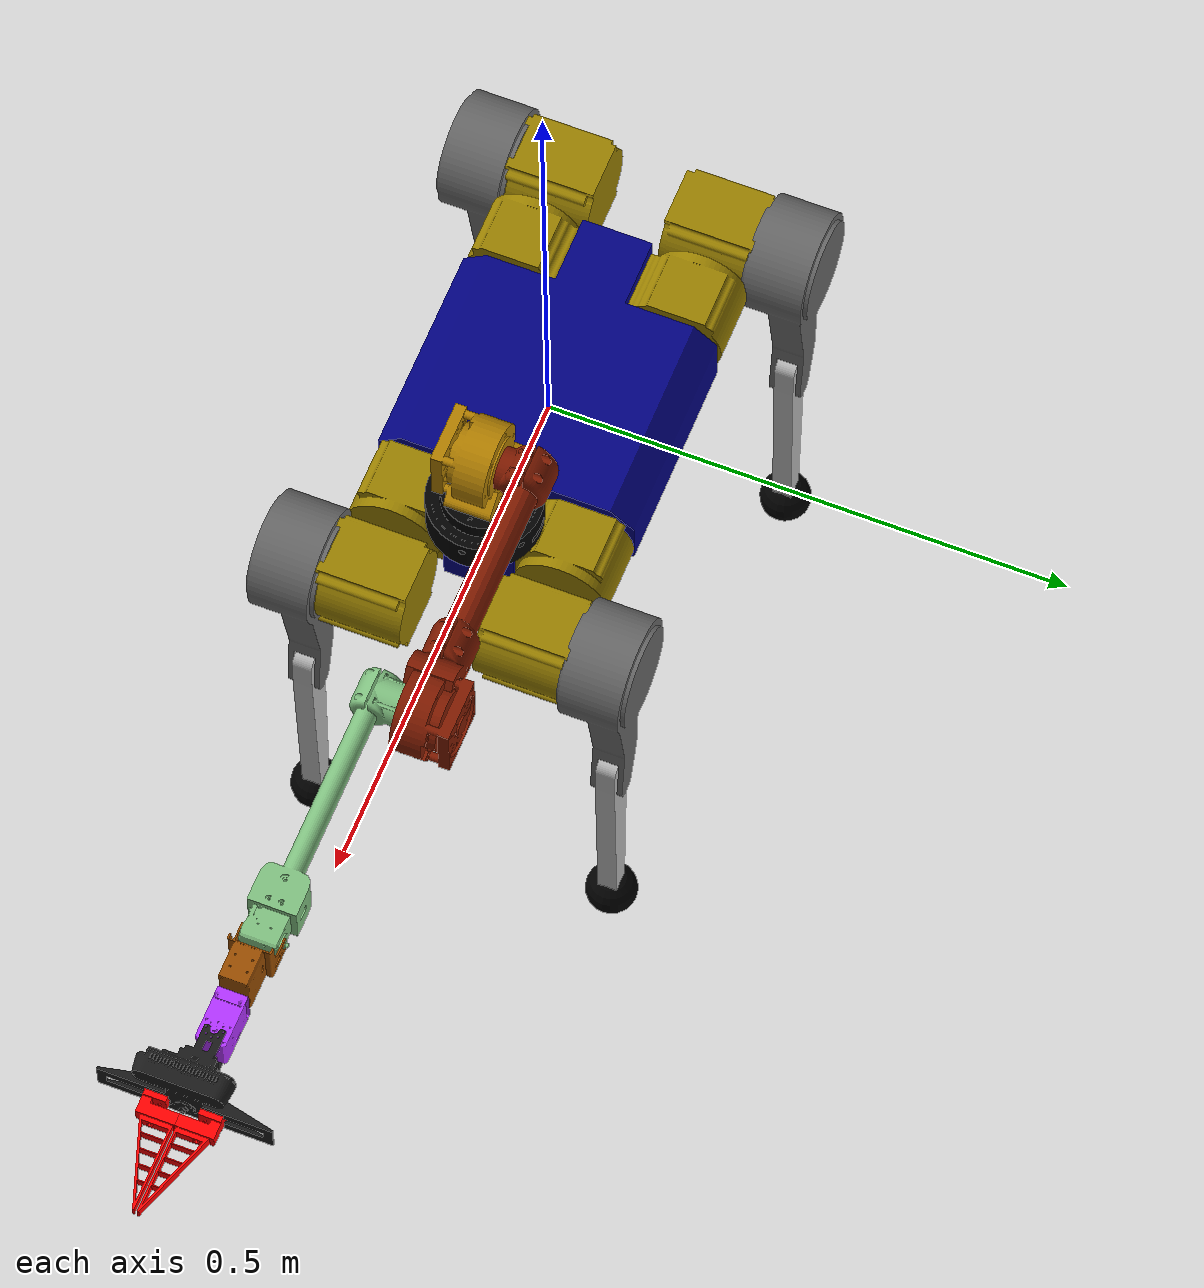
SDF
<?xml version="1.0" encoding="utf-8"?>
<sdf version='1.7'>
  <model name='rbq3'>
    <self_collide>true</self_collide>
    <joint name='world_joint' type='prismatic'>
      <child>robot_world</child>
      <parent>world</parent>
      <axis>
        <xyz>0 0 1</xyz>
        <dynamics>
          <damping>100</damping>
          <friction>100</friction>
          <spring_reference>0</spring_reference>
          <spring_stiffness>0</spring_stiffness>
        </dynamics>
      </axis>
    </joint>

    <link name='robot_world'>
    </link>

    <joint name='rbq3_base_joint' type='universal'>
      <child>trunk</child>
      <parent>robot_world</parent>
      <axis>
        <xyz>1 0 0</xyz>
        <dynamics>
          <damping>1</damping>
          <friction>1</friction>
          <spring_reference>0</spring_reference>
          <spring_stiffness>0</spring_stiffness>
        </dynamics>
        <limit>
          <lower>-1e+16</lower>
          <upper>1e+16</upper>
        </limit>
        <use_parent_model_frame>1</use_parent_model_frame>
      </axis>
      <axis2>
        <xyz>0 1 0</xyz>
        <limit>
          <lower>-1e+16</lower>
          <upper>1e+16</upper>
        </limit>
        <dynamics>
          <damping>1</damping>
          <friction>1</friction>
          <spring_reference>0</spring_reference>
          <spring_stiffness>0</spring_stiffness>
        </dynamics>
        <use_parent_model_frame>1</use_parent_model_frame>
      </axis2>
    </joint>

    <link name='trunk'>
      <inertial>
        <pose>-0.000351 -9e-06 -0.003571 0 -0 0</pose>
        <mass>11.5766</mass>
        <inertia>
          <ixx>0.0668505</ixx>
          <ixy>-6.16234e-05</ixy>
          <ixz>-8.13391e-05</ixz>
          <iyy>0.124923</iyy>
          <iyz>-2.17591e-05</iyz>
          <izz>0.177428</izz>
        </inertia>
      </inertial>
      <collision name='trunk_collision'>
        <pose>0 0 0.0084 0 -0 0</pose>
        <geometry>
          <box>
            <size>0.3 0.15 0.0168</size>
          </box>
        </geometry>
      </collision>
      <visual name='trunk_visual'>
        <pose>0 0 0 0 -0 0</pose>
        <geometry>
          <mesh>
            <scale>1 1 1</scale>
            <uri>model://rbq3_description/meshes/trunk1.dae</uri>
          </mesh>
        </geometry>
        <material>
          <ambient>0 0 0.5 1</ambient>  <!-- light brown -->
        </material>
      </visual>
      <visual name='trunk_fixed_joint_lump__hip_roll_motor_visual_1'>
        <pose>0 0 0 0 -0 0</pose>
        <geometry>
          <mesh>
            <scale>1 1 1</scale>
            <uri>model://rbq3_description/meshes/trunk2.stl</uri>
          </mesh>
        </geometry>
        <material>
          <ambient>0.6 0.5 0 1</ambient>  <!-- light brown -->
        </material>
      </visual>
      <visual name='trunk_fixed_joint_lump__imu_link_visual_2'>
        <pose>-0.1275 0.015 -0.02 0 -0 0</pose>
        <geometry>
          <box>
            <size>0.001 0.001 0.001</size>
          </box>
        </geometry>
      </visual>
      <sensor name='rbq3_base_imu' type='imu'>
        <pose frame=''>-0.1275 0.015 -0.02 0 -0 0</pose>
        <imu>
          <angular_velocity>
            <x> <noise type='none'></noise> </x>
            <y> <noise type='none'></noise> </y>
            <z> <noise type='none'></noise> </z>
          </angular_velocity>
          <linear_acceleration>
            <x> <noise type='none'></noise> </x>
            <y> <noise type='none'></noise> </y>
            <z> <noise type='none'></noise> </z>
          </linear_acceleration>
        </imu>
        <always_on>1</always_on>
        <update_rate>1000</update_rate>
      </sensor>
    </link>

    <joint name='FL_hip_joint' type='revolute'>
      <pose relative_to='trunk'>0.22445 0.07946 0 0 -0 0</pose>
      <parent>trunk</parent>
      <child>FL_hip</child>
      <axis>
        <xyz>1 0 0</xyz>
        <limit>
          <lower>-6.28</lower>
          <upper>6.28</upper>
          <effort>30</effort>
          <velocity>52.4</velocity>
        </limit>
        <dynamics>
          <damping>0.2</damping>
          <friction>0.2</friction>
          <spring_reference>0</spring_reference>
          <spring_stiffness>0</spring_stiffness>
        </dynamics>
      </axis>
    </joint>

    <link name='FL_hip'>
      <pose relative_to='FL_hip_joint'>0 0 0 0 -0 0</pose>
      <inertial>
        <pose>-0.00451 0.01758 4e-05 0 -0 0</pose>
        <mass>2.38674</mass>
        <inertia>
          <ixx>0.00343764</ixx>
          <ixy>0.000120457</ixy>
          <ixz>5.6913e-07</ixz>
          <iyy>0.00271864</iyy>
          <iyz>3.82695e-06</iyz>
          <izz>0.00343771</izz>
        </inertia>
      </inertial>
      <collision name='FL_hip_collision'>
        <pose>0 -0.021 0 1.5708 -0 0</pose>
        <geometry>
          <cylinder>
            <length>0.089</length>
            <radius>0.0445</radius>
          </cylinder>
        </geometry>
      </collision>
      <visual name='FL_hip_visual'>
        <pose>0 0 0 0 -0 0</pose>
        <geometry>
          <mesh>
            <scale>1 1 1</scale>
            <uri>model://rbq3_description/meshes/hip.stl</uri>
          </mesh>
        </geometry>
        <material>
          <ambient>0.6 0.5 0 1</ambient>  <!-- light brown -->
        </material>
      </visual>
    </link>

    <joint name='FL_thigh_joint' type='revolute'>
      <pose relative_to='FL_hip'>0 0.06995 0 0 -0 0</pose>
      <parent>FL_hip</parent>
      <child>FL_thigh</child>
      <axis>
        <xyz>0 1 0</xyz>
        <limit>
          <lower>-6.28</lower>
          <upper>6.28</upper>
          <effort>30</effort>
          <velocity>28.6</velocity>
        </limit>
        <dynamics>
          <damping>0.2</damping>
          <friction>0.2</friction>
          <spring_reference>0</spring_reference>
          <spring_stiffness>0</spring_stiffness>
        </dynamics>
      </axis>
    </joint>

    <link name='FL_thigh'>
      <pose relative_to='FL_thigh_joint'>0 0 0 0 -0 0</pose>
      <inertial>
        <pose>-0.00226 0.00768 -0.04112 0 -0 0</pose>
        <mass>0.67231</mass>
        <inertia>
          <ixx>0.00314694</ixx>
          <ixy>4.35611e-06</ixy>
          <ixz>9.85122e-05</ixz>
          <iyy>0.00342909</iyy>
          <iyz>0.000158744</iyz>
          <izz>0.000636166</izz>
        </inertia>
      </inertial>
      <collision name='FL_thigh_collision'>
        <pose>0 0 -0.1125 0 1.5708 0</pose>
        <geometry>
          <box>
            <size>0.225 0.04 0.04</size>
          </box>
        </geometry>
      </collision>
      <visual name='FL_thigh_visual'>
        <pose>0 0 0 0 -0 0</pose>
        <geometry>
          <mesh>
            <scale>1 1 1</scale>
            <uri>model://rbq3_description/meshes/thigh.dae</uri>
          </mesh>
        </geometry>
        <material>
          <ambient>0.4 0.4 0.4 1</ambient>  <!-- gray -->
        </material>
      </visual>
    </link>

    <joint name='FL_calf_joint' type='revolute'>
      <pose relative_to='FL_thigh'>0 0 -0.225 0 -0 0</pose>
      <parent>FL_thigh</parent>
      <child>FL_calf</child>
      <axis>
        <xyz>0 1 0</xyz>
        <limit>
          <lower>-2.77507</lower>
          <upper>-0.610865</upper>
          <effort>30</effort>
          <velocity>28.6</velocity>
        </limit>
        <dynamics>
          <damping>0.2</damping>
          <friction>0.2</friction>
          <spring_reference>0</spring_reference>
          <spring_stiffness>0</spring_stiffness>
        </dynamics>
      </axis>
    </joint>

    <link name='FL_calf'>
      <pose relative_to='FL_calf_joint'>0 0 0 0 -0 0</pose>
      <inertial>
        <pose>0.00075 0.00035 -0.08803 0 -0 0</pose>
        <mass>0.173</mass>
        <inertia>
          <ixx>0.00125879</ixx>
          <ixy>1.394e-08</ixy>
          <ixz>-1.34976e-06</ixz>
          <iyy>0.00126646</iyy>
          <iyz>-1.00471e-05</iyz>
          <izz>2.07785e-05</izz>
        </inertia>
      </inertial>
      <collision name='FL_calf_collision'>
        <pose>0 0 -0.1125 0 1.5708 0</pose>
        <geometry>
          <box>
            <size>0.225 0.025 0.025</size>
          </box>
        </geometry>
      </collision>
      <collision name='FL_calf_fixed_joint_lump__FL_foot_collision_1'>
        <pose>0 0 -0.225 0 -0 0</pose>
        <geometry>
          <sphere>
            <radius>0.025</radius>
          </sphere>
        </geometry>
      </collision>
      <visual name='FL_calf_visual'>
        <pose>0 0 0 0 -0 0</pose>
        <geometry>
          <mesh>
            <scale>1 1 1</scale>
            <uri>model://rbq3_description/meshes/calf.stl</uri>
          </mesh>
        </geometry>
      </visual>
      <visual name='FL_calf_fixed_joint_lump__FL_foot_visual_1'>
        <pose>0 0 -0.225 0 -0 0</pose>
        <geometry>
          <sphere>
            <radius>0.025</radius>
          </sphere>
        </geometry>
        <material>
          <ambient>0 0 0 1</ambient>  <!-- black -->
        </material>
      </visual>
    </link>

    <joint name='FR_hip_joint' type='revolute'>
      <pose relative_to='trunk'>0.22445 -0.07946 0 0 -0 0</pose>
      <parent>trunk</parent>
      <child>FR_hip</child>
      <axis>
        <xyz>1 0 0</xyz>
        <limit>
          <lower>-6.28</lower>
          <upper>6.28</upper>
          <effort>30</effort>
          <velocity>52.4</velocity>
        </limit>
        <dynamics>
          <damping>0.2</damping>
          <friction>0.2</friction>
          <spring_reference>0</spring_reference>
          <spring_stiffness>0</spring_stiffness>
        </dynamics>
      </axis>
    </joint>

    <link name='FR_hip'>
      <pose relative_to='FR_hip_joint'>0 0 0 0 -0 0</pose>
      <inertial>
        <pose>-0.00451 -0.01758 4e-05 0 -0 0</pose>
        <mass>2.38674</mass>
        <inertia>
          <ixx>0.00343764</ixx>
          <ixy>-0.000120457</ixy>
          <ixz>5.6913e-07</ixz>
          <iyy>0.00271864</iyy>
          <iyz>-3.82695e-06</iyz>
          <izz>0.00343771</izz>
        </inertia>
      </inertial>
      <collision name='FR_hip_collision'>
        <pose>0 0.021 0 1.5708 -0 0</pose>
        <geometry>
          <cylinder>
            <length>0.089</length>
            <radius>0.0445</radius>
          </cylinder>
        </geometry>
      </collision>
      <visual name='FR_hip_visual'>
        <pose>0 0 0 -3.14159 0 0</pose>
        <geometry>
          <mesh>
            <scale>1 1 1</scale>
            <uri>model://rbq3_description/meshes/hip.stl</uri>
          </mesh>
        </geometry>
        <material>
          <ambient>0.6 0.5 0 1</ambient>  <!-- light brown -->
        </material>
      </visual>
    </link>

    <joint name='FR_thigh_joint' type='revolute'>
      <pose relative_to='FR_hip'>0 -0.06995 0 0 -0 0</pose>
      <parent>FR_hip</parent>
      <child>FR_thigh</child>
      <axis>
        <xyz>0 1 0</xyz>
        <limit>
          <lower>-6.28</lower>
          <upper>6.28</upper>
          <effort>30</effort>
          <velocity>28.6</velocity>
        </limit>
        <dynamics>
          <damping>0.2</damping>
          <friction>0.2</friction>
          <spring_reference>0</spring_reference>
          <spring_stiffness>0</spring_stiffness>
        </dynamics>
      </axis>
    </joint>

    <link name='FR_thigh'>
      <pose relative_to='FR_thigh_joint'>0 0 0 0 -0 0</pose>
      <inertial>
        <pose>-0.00226 -0.00768 -0.04112 0 -0 0</pose>
        <mass>0.67231</mass>
        <inertia>
          <ixx>0.00314694</ixx>
          <ixy>-4.35611e-06</ixy>
          <ixz>9.85122e-05</ixz>
          <iyy>0.00342909</iyy>
          <iyz>-0.000158744</iyz>
          <izz>0.000636166</izz>
        </inertia>
      </inertial>
      <collision name='FR_thigh_collision'>
        <pose>0 0 -0.1125 0 1.5708 0</pose>
        <geometry>
          <box>
            <size>0.225 0.04 0.04</size>
          </box>
        </geometry>
      </collision>
      <visual name='FR_thigh_visual'>
        <pose>0 0 0 0 -0 0</pose>
        <geometry>
          <mesh>
            <scale>1 1 1</scale>
            <uri>model://rbq3_description/meshes/thigh.dae</uri>
          </mesh>
        </geometry>
        <material>
          <ambient>0.4 0.4 0.4 1</ambient>  <!-- gray -->
        </material>
      </visual>
    </link>

    <joint name='FR_calf_joint' type='revolute'>
      <pose relative_to='FR_thigh'>0 0 -0.225 0 -0 0</pose>
      <parent>FR_thigh</parent>
      <child>FR_calf</child>
      <axis>
        <xyz>0 1 0</xyz>
        <limit>
          <lower>-2.77507</lower>
          <upper>-0.610865</upper>
          <effort>30</effort>
          <velocity>28.6</velocity>
        </limit>
        <dynamics>
          <damping>0.2</damping>
          <friction>0.2</friction>
          <spring_reference>0</spring_reference>
          <spring_stiffness>0</spring_stiffness>
        </dynamics>
      </axis>
    </joint>

    <link name='FR_calf'>
      <pose relative_to='FR_calf_joint'>0 0 0 0 -0 0</pose>
      <inertial>
        <pose>0.00075 0.00035 -0.08803 0 -0 0</pose>
        <mass>0.173</mass>
        <inertia>
          <ixx>0.00125879</ixx>
          <ixy>1.394e-08</ixy>
          <ixz>-1.34976e-06</ixz>
          <iyy>0.00126646</iyy>
          <iyz>-1.00471e-05</iyz>
          <izz>2.07785e-05</izz>
        </inertia>
      </inertial>
      <collision name='FR_calf_collision'>
        <pose>0 0 -0.1125 0 1.5708 0</pose>
        <geometry>
          <box>
            <size>0.225 0.025 0.025</size>
          </box>
        </geometry>
      </collision>
      <collision name='FR_calf_fixed_joint_lump__FR_foot_collision_1'>
        <pose>0 0 -0.225 0 -0 0</pose>
        <geometry>
          <sphere>
            <radius>0.025</radius>
          </sphere>
        </geometry>
      </collision>
      <visual name='FR_calf_visual'>
        <pose>0 0 0 0 -0 0</pose>
        <geometry>
          <mesh>
            <scale>1 1 1</scale>
            <uri>model://rbq3_description/meshes/calf.stl</uri>
          </mesh>
        </geometry>
      </visual>
      <visual name='FR_calf_fixed_joint_lump__FR_foot_visual_1'>
        <pose>0 0 -0.225 0 -0 0</pose>
        <geometry>
          <sphere>
            <radius>0.025</radius>
          </sphere>
        </geometry>
        <material>
          <ambient>0 0 0 1</ambient>  <!-- black -->
        </material>
      </visual>
    </link>

    <joint name='RL_hip_joint' type='revolute'>
      <pose relative_to='trunk'>-0.22445 0.07946 0 0 -0 0</pose>
      <parent>trunk</parent>
      <child>RL_hip</child>
      <axis>
        <xyz>1 0 0</xyz>
        <limit>
          <lower>-6.28</lower>
          <upper>6.28</upper>
          <effort>30</effort>
          <velocity>52.4</velocity>
        </limit>
        <dynamics>
          <damping>0.2</damping>
          <friction>0.2</friction>
          <spring_reference>0</spring_reference>
          <spring_stiffness>0</spring_stiffness>
        </dynamics>
      </axis>
    </joint>

    <link name='RL_hip'>
      <pose relative_to='RL_hip_joint'>0 0 0 0 -0 0</pose>
      <inertial>
        <pose>0.00451 0.01758 4e-05 0 -0 0</pose>
        <mass>2.38674</mass>
        <inertia>
          <ixx>0.00343764</ixx>
          <ixy>-0.000120457</ixy>
          <ixz>-5.6913e-07</ixz>
          <iyy>0.00271864</iyy>
          <iyz>3.82695e-06</iyz>
          <izz>0.00343771</izz>
        </inertia>
      </inertial>
      <collision name='RL_hip_collision'>
        <pose>0 -0.021 0 1.5708 -0 0</pose>
        <geometry>
          <cylinder>
            <length>0.089</length>
            <radius>0.0445</radius>
          </cylinder>
        </geometry>
      </collision>
      <visual name='RL_hip_visual'>
        <pose>0 0 0 3.14159 -0 3.14159</pose>
        <geometry>
          <mesh>
            <scale>1 1 1</scale>
            <uri>model://rbq3_description/meshes/hip.stl</uri>
          </mesh>
        </geometry>
        <material>
          <ambient>0.6 0.5 0 1</ambient>  <!-- light brown -->
        </material>
      </visual>
    </link>

    <joint name='RL_thigh_joint' type='revolute'>
      <pose relative_to='RL_hip'>0 0.06995 0 0 -0 0</pose>
      <parent>RL_hip</parent>
      <child>RL_thigh</child>
      <axis>
        <xyz>0 1 0</xyz>
        <limit>
          <lower>-6.28</lower>
          <upper>6.28</upper>
          <effort>30</effort>
          <velocity>28.6</velocity>
        </limit>
        <dynamics>
          <damping>0.2</damping>
          <friction>0.2</friction>
          <spring_reference>0</spring_reference>
          <spring_stiffness>0</spring_stiffness>
        </dynamics>
      </axis>
    </joint>

    <link name='RL_thigh'>
      <pose relative_to='RL_thigh_joint'>0 0 0 0 -0 0</pose>
      <inertial>
        <pose>-0.00226 0.00768 -0.04112 0 -0 0</pose>
        <mass>0.67231</mass>
        <inertia>
          <ixx>0.00314694</ixx>
          <ixy>4.35611e-06</ixy>
          <ixz>9.85122e-05</ixz>
          <iyy>0.00342909</iyy>
          <iyz>0.000158744</iyz>
          <izz>0.000636166</izz>
        </inertia>
      </inertial>
      <collision name='RL_thigh_collision'>
        <pose>0 0 -0.1125 0 1.5708 0</pose>
        <geometry>
          <box>
            <size>0.225 0.04 0.04</size>
          </box>
        </geometry>
      </collision>
      <visual name='RL_thigh_visual'>
        <pose>0 0 0 0 -0 0</pose>
        <geometry>
          <mesh>
            <scale>1 1 1</scale>
            <uri>model://rbq3_description/meshes/thigh.dae</uri>
          </mesh>
        </geometry>
        <material>
          <ambient>0.4 0.4 0.4 1</ambient>  <!-- gray -->
        </material>
      </visual>
    </link>

    <joint name='RL_calf_joint' type='revolute'>
      <pose relative_to='RL_thigh'>0 0 -0.225 0 -0 0</pose>
      <parent>RL_thigh</parent>
      <child>RL_calf</child>
      <axis>
        <xyz>0 1 0</xyz>
        <limit>
          <lower>-2.77507</lower>
          <upper>-0.610865</upper>
          <effort>30</effort>
          <velocity>28.6</velocity>
        </limit>
        <dynamics>
          <damping>0.2</damping>
          <friction>0.2</friction>
          <spring_reference>0</spring_reference>
          <spring_stiffness>0</spring_stiffness>
        </dynamics>
      </axis>
    </joint>

    <link name='RL_calf'>
      <pose relative_to='RL_calf_joint'>0 0 0 0 -0 0</pose>
      <inertial>
        <pose>0.00075 0.00035 -0.08803 0 -0 0</pose>
        <mass>0.173</mass>
        <inertia>
          <ixx>0.00125879</ixx>
          <ixy>1.394e-08</ixy>
          <ixz>-1.34976e-06</ixz>
          <iyy>0.00126646</iyy>
          <iyz>-1.00471e-05</iyz>
          <izz>2.07785e-05</izz>
        </inertia>
      </inertial>
      <collision name='RL_calf_collision'>
        <pose>0 0 -0.125 0 1.5708 0</pose>
        <geometry>
          <box>
            <size>0.225 0.025 0.025</size>
          </box>
        </geometry>
      </collision>
      <collision name='RL_calf_fixed_joint_lump__RL_foot_collision_1'>
        <pose>0 0 -0.225 0 -0 0</pose>
        <geometry>
          <sphere>
            <radius>0.025</radius>
          </sphere>
        </geometry>
      </collision>
      <visual name='RL_calf_visual'>
        <pose>0 0 0 0 -0 0</pose>
        <geometry>
          <mesh>
            <scale>1 1 1</scale>
            <uri>model://rbq3_description/meshes/calf.stl</uri>
          </mesh>
        </geometry>
      </visual>
      <visual name='RL_calf_fixed_joint_lump__RL_foot_visual_1'>
        <pose>0 0 -0.225 0 -0 0</pose>
        <geometry>
          <sphere>
            <radius>0.025</radius>
          </sphere>
        </geometry>
        <material>
          <ambient>0 0 0 1</ambient>  <!-- black -->
        </material>
      </visual>
    </link>

    <joint name='RR_hip_joint' type='revolute'>
      <pose relative_to='trunk'>-0.22445 -0.07946 0 0 -0 0</pose>
      <parent>trunk</parent>
      <child>RR_hip</child>
      <axis>
        <xyz>1 0 0</xyz>
        <limit>
          <lower>-6.28</lower>
          <upper>6.28</upper>
          <effort>20</effort>
          <velocity>52.4</velocity>
        </limit>
        <dynamics>
          <damping>0.2</damping>
          <friction>0.2</friction>
          <spring_reference>0</spring_reference>
          <spring_stiffness>0</spring_stiffness>
        </dynamics>
      </axis>
    </joint>

    <link name='RR_hip'>
      <pose relative_to='RR_hip_joint'>0 0 0 0 -0 0</pose>
      <inertial>
        <pose>0.00451 -0.01758 4e-05 0 -0 0</pose>
        <mass>2.38674</mass>
        <inertia>
          <ixx>0.00343764</ixx>
          <ixy>0.000120457</ixy>
          <ixz>-5.6913e-07</ixz>
          <iyy>0.00271864</iyy>
          <iyz>-3.82695e-06</iyz>
          <izz>0.00343771</izz>
        </inertia>
      </inertial>
      <collision name='RR_hip_collision'>
        <pose>0 0.021 0 1.5708 -0 0</pose>
        <geometry>
          <cylinder>
            <length>0.089</length>
            <radius>0.0445</radius>
          </cylinder>
        </geometry>
      </collision>
      <visual name='RR_hip_visual'>
        <pose>0 0 0 0 -0 3.14159</pose>
        <geometry>
          <mesh>
            <scale>1 1 1</scale>
            <uri>model://rbq3_description/meshes/hip.stl</uri>
          </mesh>
        </geometry>
        <material>
          <ambient>0.6 0.5 0 1</ambient>  <!-- light brown -->
        </material>
      </visual>
    </link>

    <joint name='RR_thigh_joint' type='revolute'>
      <pose relative_to='RR_hip'>0 -0.06995 0 0 -0 0</pose>
      <parent>RR_hip</parent>
      <child>RR_thigh</child>
      <axis>
        <xyz>0 1 0</xyz>
        <limit>
          <lower>-6.28</lower>
          <upper>6.28</upper>
          <effort>30</effort>
          <velocity>28.6</velocity>
        </limit>
        <dynamics>
          <damping>0.2</damping>
          <friction>0.2</friction>
          <spring_reference>0</spring_reference>
          <spring_stiffness>0</spring_stiffness>
        </dynamics>
      </axis>
    </joint>

    <link name='RR_thigh'>
      <pose relative_to='RR_thigh_joint'>0 0 0 0 -0 0</pose>
      <inertial>
        <pose>-0.00226 -0.00768 -0.04112 0 -0 0</pose>
        <mass>0.67231</mass>
        <inertia>
          <ixx>0.00314694</ixx>
          <ixy>-4.35611e-06</ixy>
          <ixz>9.85122e-05</ixz>
          <iyy>0.00342909</iyy>
          <iyz>-0.000158744</iyz>
          <izz>0.000636166</izz>
        </inertia>
      </inertial>
      <collision name='RR_thigh_collision'>
        <pose>0 0 -0.1125 0 1.5708 0</pose>
        <geometry>
          <box>
            <size>0.225 0.04 0.04</size>
          </box>
        </geometry>
      </collision>
      <visual name='RR_thigh_visual'>
        <pose>0 0 0 0 -0 0</pose>
        <geometry>
          <mesh>
            <scale>1 1 1</scale>
            <uri>model://rbq3_description/meshes/thigh.dae</uri>
          </mesh>
        </geometry>
        <material>
          <ambient>0.4 0.4 0.4 1</ambient>  <!-- gray -->
        </material>
      </visual>
    </link>

    <joint name='RR_calf_joint' type='revolute'>
      <pose relative_to='RR_thigh'>0 0 -0.225 0 -0 0</pose>
      <parent>RR_thigh</parent>
      <child>RR_calf</child>
      <axis>
        <xyz>0 1 0</xyz>
        <limit>
          <lower>-2.77507</lower>
          <upper>-0.610865</upper>
          <effort>30</effort>
          <velocity>28.6</velocity>
        </limit>
        <dynamics>
          <damping>0.2</damping>
          <friction>0.2</friction>
          <spring_reference>0</spring_reference>
          <spring_stiffness>0</spring_stiffness>
        </dynamics>
      </axis>
    </joint>

    <link name='RR_calf'>
      <pose relative_to='RR_calf_joint'>0 0 0 0 -0 0</pose>
      <inertial>
        <pose>0.00075 0.00035 -0.08803 0 -0 0</pose>
        <mass>0.173</mass>
        <inertia>
          <ixx>0.00125879</ixx>
          <ixy>1.394e-08</ixy>
          <ixz>-1.34976e-06</ixz>
          <iyy>0.00126646</iyy>
          <iyz>-1.00471e-05</iyz>
          <izz>2.07785e-05</izz>
        </inertia>
      </inertial>
      <collision name='RR_calf_collision'>
        <pose>0 0 -0.1125 0 1.5708 0</pose>
        <geometry>
          <box>
            <size>0.225 0.025 0.025</size>
          </box>
        </geometry>
      </collision>
      <collision name='RR_calf_fixed_joint_lump__RR_foot_collision_1'>
        <pose>0 0 -0.225 0 -0 0</pose>
        <geometry>
          <sphere>
            <radius>0.025</radius>
          </sphere>
        </geometry>
      </collision>
      <visual name='RR_calf_visual'>
        <pose>0 0 0 0 -0 0</pose>
        <geometry>
          <mesh>
            <scale>1 1 1</scale>
            <uri>model://rbq3_description/meshes/calf.stl</uri>
          </mesh>
        </geometry>
      </visual>
      <visual name='RR_calf_fixed_joint_lump__RR_foot_visual_1'>
        <pose>0 0 -0.225 0 -0 0</pose>
        <geometry>
          <sphere>
            <radius>0.025</radius>
          </sphere>
        </geometry>
        <material>
          <ambient>0 0 0 1</ambient>  <!-- black -->
        </material>
      </visual>
    </link>

    <joint name='manipulator_base_joint' type='fixed'>
      <pose relative_to='trunk'>0.15 0 0.05 0 0 0</pose>
      <child>manipulator_base_link</child>
      <parent>trunk</parent>
      <axis>
        <xyz>0 0 0</xyz>
        <limit>
          <lower>-1e+16</lower>
          <upper>1e+16</upper>
        </limit>
        <dynamics>
          <spring_reference>0</spring_reference>
          <spring_stiffness>0</spring_stiffness>
        </dynamics>
        <use_parent_model_frame>1</use_parent_model_frame>
      </axis>
    </joint>

    <link name='manipulator_base_link'>
      <pose relative_to='manipulator_base_joint'>0 0 0 0 0 0</pose>
      <inertial>
        <pose>0 0.000334 0.031072 0 -0 0</pose>
        <mass>0.594687</mass>
        <inertia>
          <ixx>0.000331218</ixx>
          <ixy>-4.35299e-13</ixy>
          <ixz>1.53068e-12</ixz>
          <iyy>0.000348337</iyy>
          <iyz>2.26266e-06</iyz>
          <izz>0.000569437</izz>
        </inertia>
      </inertial>
      <visual name='manipulator_base_link_visual'>
        <pose>0 0 0 0 0 0</pose>
        <geometry>
          <mesh>
            <scale>1 1 1</scale>
            <uri>model://st_arm_description/meshes/stl/base_link.STL</uri>
          </mesh>
        </geometry>
        <material>
          <ambient>0.0 0.0 0.0 1</ambient>
        </material>
      </visual>
      <sensor name="front_camera" type="camera">
        <pose>+0.12 +0 +0 0 0 0</pose>
        <camera>
          <horizontal_fov>2.1</horizontal_fov>
          <image>
            <format>R8G8B8</format>
            <width>848</width>
            <height>480</height>
          </image>
          <clip>
            <near>0.02</near>
            <far>100</far>
          </clip>
          <lens>
            <type>gnomonical</type>
            <scale_to_hfov>true</scale_to_hfov>
            <cutoff_angle>1.5707</cutoff_angle>
            <env_texture_size>512</env_texture_size>
          </lens>
        </camera>
        <plugin name="camera_controller" filename="libgazebo_ros_camera.so">
          <alwaysOn>true</alwaysOn>
          <updateRate>60</updateRate>
          <robotNamespace>gazebo</robotNamespace>
          <cameraName>front_camera</cameraName>
          <imageTopicName>image_raw</imageTopicName>
          <cameraInfoTopicName>camera_info</cameraInfoTopicName>
          <frameName>camera_link</frameName>
        </plugin>
        <visualize>true</visualize>
      </sensor>

    </link>

    <joint name='shoulder_yaw_joint' type='revolute'>
      <pose relative_to='manipulator_base_link'>0 0 0 0 -0 0</pose>
      <parent>manipulator_base_link</parent>
      <child>shoulder_yaw_link</child>
      <axis>
        <xyz>0 0 1</xyz>
        <limit>
          <lower>-3.14</lower>
          <upper>3.14</upper>
          <effort>1</effort>
          <velocity>1</velocity>
        </limit>
        <dynamics>
          <damping>0.1</damping>
          <friction>0.1</friction>
          <spring_reference>0</spring_reference>
          <spring_stiffness>0</spring_stiffness>
        </dynamics>
      </axis>
    </joint>

    <link name='shoulder_yaw_link'>
      <pose relative_to='shoulder_yaw_joint'>0 0 0 0 -0 0</pose>
      <inertial>
        <pose>-0.000214 -0.001515 0.095825 0 -0 0</pose>
        <mass>0.54333</mass>
        <inertia>
          <ixx>0.00024585</ixx>
          <ixy>-1.4768e-07</ixy>
          <ixz>5.048e-07</ixz>
          <iyy>0.00040153</iyy>
          <iyz>2.0866e-07</iyz>
          <izz>0.00026279</izz>
        </inertia>
      </inertial>
      <visual name='shoulder_yaw_link_visual'>
        <pose>0 0 0 0 -0 0</pose>
        <geometry>
          <mesh>
            <scale>1 1 1</scale>
            <uri>model://st_arm_description/meshes/stl/shoulder_yaw_link.STL</uri>
          </mesh>
        </geometry>
        <material>
          <ambient>0.7 0.5 0 1</ambient>
        </material>
      </visual>
    </link>

    <joint name='shoulder_pitch_joint' type='revolute'>
      <pose relative_to='shoulder_yaw_link'>0 0 0.1019 0 -0 0</pose>
      <parent>shoulder_yaw_link</parent>
      <child>shoulder_pitch_link</child>
      <axis>
        <xyz>0 1 0</xyz>
        <limit>
          <lower>-3.9</lower>
          <upper>0.76</upper>
          <effort>1</effort>
          <velocity>1</velocity>
        </limit>
        <dynamics>
          <damping>0.1</damping>
          <friction>0.1</friction>
          <spring_reference>0</spring_reference>
          <spring_stiffness>0</spring_stiffness>
        </dynamics>
      </axis>
    </joint>

    <link name='shoulder_pitch_link'>
      <pose relative_to='shoulder_pitch_joint'>0 0 0 0 -0 0</pose>
      <inertial>
        <pose>0.21581 0.045076 -0.0013 0 -0 0</pose>
        <mass>0.67378</mass>
        <inertia>
          <ixx>0.00029261</ixx>
          <ixy>-4.307e-08</ixy>
          <ixz>2.9167e-11</ixz>
          <iyy>0.00072308</iyy>
          <iyz>-5.329e-11</iyz>
          <izz>0.00056226</izz>
        </inertia>
      </inertial>
      <visual name='shoulder_pitch_link_visual'>
        <pose>0 0 0 0 -0 0</pose>
        <geometry>
          <mesh>
            <scale>1 1 1</scale>
            <uri>model://st_arm_description/meshes/stl/shoulder_pitch_link.STL</uri>
          </mesh>
        </geometry>
        <material>
          <ambient>0.5 0.1 0 1</ambient>
        </material>
      </visual>
    </link>

    <joint name='elbow_pitch_joint' type='revolute'>
      <pose relative_to='shoulder_pitch_link'>0.25025 0 -0.0013 0 -0 0</pose>
      <parent>shoulder_pitch_link</parent>
      <child>elbow_pitch_link</child>
      <axis>
        <xyz>0 1 0</xyz>
        <limit>
          <lower>-2.9</lower>
          <upper>2.9</upper>
          <effort>1</effort>
          <velocity>1</velocity>
        </limit>
        <dynamics>
          <damping>0.1</damping>
          <friction>0.1</friction>
          <spring_reference>0</spring_reference>
          <spring_stiffness>0</spring_stiffness>
        </dynamics>
      </axis>
    </joint>

    <link name='elbow_pitch_link'>
      <pose relative_to='elbow_pitch_joint'>0 0 0 0 -0 0</pose>
      <inertial>
        <pose>0.16286 0.001042 -1.3e-05 0 -0 0</pose>
        <mass>0.19195</mass>
        <inertia>
          <ixx>3.4268e-05</ixx>
          <ixy>-9.3019e-08</ixy>
          <ixz>-1.9862e-08</ixz>
          <iyy>0.00025813</iyy>
          <iyz>-1.2312e-10</iyz>
          <izz>0.00025965</izz>
        </inertia>
      </inertial>
      <visual name='elbow_pitch_link_visual'>
        <pose>0 0 0 0 -0 0</pose>
        <geometry>
          <mesh>
            <scale>1 1 1</scale>
            <uri>model://st_arm_description/meshes/stl/elbow_pitch_link.STL</uri>
          </mesh>
        </geometry>
        <material>
          <ambient>0.5 0.75 0.5 1</ambient>
        </material>
      </visual>
    </link>

    <joint name='wrist_pitch_joint' type='revolute'>
      <pose relative_to='elbow_pitch_link'>0.25 0 0 0 -0 0</pose>
      <parent>elbow_pitch_link</parent>
      <child>wrist_pitch_link</child>
      <axis>
        <xyz>0 1 0</xyz>
        <limit>
          <lower>-1.57</lower>
          <upper>1.57</upper>
          <effort>1</effort>
          <velocity>1</velocity>
        </limit>
        <dynamics>
          <damping>0.1</damping>
          <friction>0.1</friction>
          <spring_reference>0</spring_reference>
          <spring_stiffness>0</spring_stiffness>
        </dynamics>
      </axis>
    </joint>

    <link name='wrist_pitch_link'>
      <pose relative_to='wrist_pitch_joint'>0 0 0 0 -0 0</pose>
      <inertial>
        <pose>0.045085 -1e-06 0.011658 0 -0 0</pose>
        <mass>0.083173</mass>
        <inertia>
          <ixx>2.0095e-05</ixx>
          <ixy>-5.0033e-12</ixy>
          <ixz>8.2681e-08</ixz>
          <iyy>2.3128e-05</iyy>
          <iyz>-1.1534e-09</iyz>
          <izz>1.3913e-05</izz>
        </inertia>
      </inertial>
      <visual name='wrist_pitch_link_visual'>
        <pose>0 0 0 0 -0 0</pose>
        <geometry>
          <mesh>
            <scale>1 1 1</scale>
            <uri>model://st_arm_description/meshes/stl/wrist_pitch_link.STL</uri>
          </mesh>
        </geometry>
        <material>
          <ambient>0.6 0.3 0.0 1</ambient>
        </material>
      </visual>
    </link>

    <joint name='wrist_roll_joint' type='revolute'>
      <pose relative_to='wrist_pitch_link'>0 0 0 0 -0 0</pose>
      <parent>wrist_pitch_link</parent>
      <child>wrist_roll_link</child>
      <axis>
        <xyz>1 0 0</xyz>
        <limit>
          <lower>-1.57</lower>
          <upper>1.57</upper>
          <effort>1</effort>
          <velocity>1</velocity>
        </limit>
        <dynamics>
          <damping>0.1</damping>
          <friction>0.1</friction>
          <spring_reference>0</spring_reference>
          <spring_stiffness>0</spring_stiffness>
        </dynamics>
      </axis>
    </joint>

    <link name='wrist_roll_link'>
      <pose relative_to='wrist_roll_joint'>0 0 0 0 -0 0</pose>
      <inertial>
        <pose>0.092842 -1e-06 8.5e-05 0 -0 0</pose>
        <mass>0.083173</mass>
        <inertia>
          <ixx>1.3913e-05</ixx>
          <ixy>1.1534e-09</ixy>
          <ixz>-8.2681e-08</ixz>
          <iyy>2.3128e-05</iyy>
          <iyz>-5.0033e-12</iyz>
          <izz>2.0095e-05</izz>
        </inertia>
      </inertial>
      <visual name='wrist_roll_link_visual'>
        <pose>0 0 0 0 -0 0</pose>
        <geometry>
          <mesh>
            <scale>1 1 1</scale>
            <uri>model://st_arm_description/meshes/stl/wrist_roll_link.STL</uri>
          </mesh>
        </geometry>
        <material>
          <ambient>0.7 0.2 1 1</ambient>
        </material>
      </visual>
    </link>

    <joint name='wrist_yaw_joint' type='revolute'>
      <pose relative_to='wrist_roll_link'>0.1045 0 0 0 -0 0</pose>
      <parent>wrist_roll_link</parent>
      <child>wrist_yaw_link</child>
      <axis>
        <xyz>0 0 1</xyz>
        <limit>
          <lower>-2</lower>
          <upper>2</upper>
          <effort>1</effort>
          <velocity>1</velocity>
        </limit>
        <dynamics>
          <damping>0.1</damping>
          <friction>0.1</friction>
          <spring_reference>0</spring_reference>
          <spring_stiffness>0</spring_stiffness>
        </dynamics>
      </axis>
    </joint>

    <link name='wrist_yaw_link'>
      <pose relative_to='wrist_yaw_joint'>0 0 0 0 -0 0</pose>
      <inertial>
        <pose>0.052329 9.6e-05 0.048909 0 -0 0</pose>
        <mass>0.35586</mass>
        <inertia>
          <ixx>0.00015921</ixx>
          <ixy>9.8072e-08</ixy>
          <ixz>-8.8956e-06</ixz>
          <iyy>8.6416e-05</iyy>
          <iyz>-3.9951e-08</iyz>
          <izz>0.00011678</izz>
        </inertia>
      </inertial>
      <visual name='wrist_yaw_link_visual'>
        <pose>0 0 0 0 -0 0</pose>
        <geometry>
          <mesh>
            <scale>1 1 1</scale>
            <uri>model://st_arm_description/meshes/stl/wrist_yaw_link.STL</uri>
          </mesh>
        </geometry>
        <material>
          <ambient>0.1 0.1 0.1 1</ambient>
        </material>
      </visual>
      <sensor name="end_effector_camera" type="camera">
        <pose>0.07 0 0.08 0 0.5 0</pose>
        <camera>
          <horizontal_fov>2.1</horizontal_fov>
          <image>
            <format>R8G8B8</format>
            <width>848</width>
            <height>480</height>
          </image>
          <clip>
            <near>0.02</near>
            <far>100</far>
          </clip>
          <lens>
            <type>gnomonical</type>
            <scale_to_hfov>true</scale_to_hfov>
            <cutoff_angle>1.5707</cutoff_angle>
            <env_texture_size>512</env_texture_size>
          </lens>
        </camera>
        <plugin name="camera_controller" filename="libgazebo_ros_camera.so">
          <alwaysOn>true</alwaysOn>
          <updateRate>60</updateRate>
          <robotNamespace>gazebo</robotNamespace>
          <cameraName>ee_camera</cameraName>
          <imageTopicName>image_raw</imageTopicName>
          <cameraInfoTopicName>camera_info</cameraInfoTopicName>
          <frameName>camera_link</frameName>
        </plugin>
        <visualize>true</visualize>
      </sensor>

    </link>

    <joint name='gripper_left_joint' type='prismatic'>
      <pose relative_to='wrist_yaw_link'>0.083595 0 0 0 -0 0</pose>
      <parent>wrist_yaw_link</parent>
      <child>gripper_left_link</child>
      <axis>
        <xyz>0 -1 0</xyz>
        <limit>
          <lower>-0.03</lower>
          <upper>0</upper>
          <effort>1</effort>
          <velocity>1</velocity>
        </limit>
        <dynamics>
          <damping>0.1</damping>
          <friction>0.1</friction>
          <spring_reference>0</spring_reference>
          <spring_stiffness>0</spring_stiffness>
        </dynamics>
      </axis>
    </joint>

    <link name='gripper_left_link'>
      <pose relative_to='gripper_left_joint'>0 0 0 0 -0 0</pose>

      <inertial>
        <pose>0.009226 0.017837 -0 0 -0 0</pose>
        <mass>0.0151655</mass>
        <inertia>
          <ixx>4.9184e-06</ixx>
          <ixy>2.0272e-06</ixy>
          <ixz>2.5567e-12</ixz>
          <iyy>1.7402e-05</iyy>
          <iyz>-5.3646e-12</iyz>
          <izz>1.8906e-05</izz>
        </inertia>
      </inertial>

      <collision name='gripper_left_link_collision'>
        <pose>0.0425 0.015 0 0 0 0</pose>
        <geometry>
          <box>
            <size>0.085 0.03 0.02</size>
          </box>
        </geometry>

        <surface>
          <!--NOTE: Used dynamic friction of clean dry plastic cube on a plastic surface
          (i.e. Polyethylene) see https://www.engineeringtoolbox.com/friction-coefficients-d_778.html
          -->
          <friction>
            <ode>
              <mu>1.2</mu>
              <mu2>1.2</mu2>
            </ode>
          </friction>
          <contact>
            <collide_bitmask>1</collide_bitmask>
            <ode>
              <kp>1e+06</kp>
              <kd>1e+06</kd>
              <max_vel>1</max_vel>
              <min_depth>0.002</min_depth>
            </ode>
            <bullet>
              <kp>1e+06</kp>
              <kd>1e+06</kd>
            </bullet>
          </contact>
        </surface>

      </collision>

      <visual name='gripper_left_link_visual'>
        <pose>0 0 0 0 -0 0</pose>
        <geometry>
          <mesh>
            <scale>1 1 1</scale>
            <uri>model://st_arm_description/meshes/stl/gripper_left_link.STL</uri>
          </mesh>
        </geometry>
        <material>
          <ambient>1 0 0 1</ambient>
        </material>
      </visual>
    </link>

    <joint name='gripper_right_joint' type='prismatic'>
      <pose relative_to='wrist_yaw_link'>0.083595 0 0 0 -0 0</pose>
      <parent>wrist_yaw_link</parent>
      <child>gripper_right_link</child>
      <axis>
        <xyz>0 1 0</xyz>
        <limit>
          <lower>-0.03</lower>
          <upper>0</upper>
          <effort>1</effort>
          <velocity>1</velocity>
        </limit>
        <dynamics>
          <damping>0.1</damping>
          <friction>0.1</friction>
          <spring_reference>0</spring_reference>
          <spring_stiffness>0</spring_stiffness>
        </dynamics>
      </axis>
    </joint>

    <link name='gripper_right_link'>
      <pose relative_to='gripper_right_joint'>0 0 0 0 -0 0</pose>
      <inertial>
        <pose>0.009226 -0.017837 0 0 -0 0</pose>
        <mass>0.03768</mass>
        <inertia>
          <ixx>4.9184e-06</ixx>
          <ixy>-2.0272e-06</ixy>
          <ixz>-2.5567e-12</ixz>
          <iyy>1.7402e-05</iyy>
          <iyz>-5.3646e-12</iyz>
          <izz>1.8906e-05</izz>
        </inertia>
      </inertial>

      <collision name='gripper_right_link_collision'>
        <pose>0.0425 -0.015 0 0 0 0</pose>
        <geometry>
          <box>
            <size>0.085 0.03 0.02</size>
          </box>
        </geometry>

        <surface>
          <!--NOTE: Used dynamic friction of clean dry plastic cube on a plastic surface
          (i.e. Polyethylene) see https://www.engineeringtoolbox.com/friction-coefficients-d_778.html
          -->
          <friction>
            <ode>
              <mu>1.2</mu>
              <mu2>1.2</mu2>
            </ode>
          </friction>
          <contact>
            <collide_bitmask>1</collide_bitmask>
            <ode>
              <kp>1e+06</kp>
              <kd>1e+06</kd>
              <max_vel>1</max_vel>
              <min_depth>0.002</min_depth>
            </ode>
            <bullet>
              <kp>1e+06</kp>
              <kd>1e+06</kd>
            </bullet>
          </contact>
        </surface>

      </collision>

      <visual name='gripper_right_link_visual'>
        <pose>0 0 0 0 -0 0</pose>
        <geometry>
          <mesh>
            <scale>1 1 1</scale>
            <uri>model://st_arm_description/meshes/stl/gripper_right_link.STL</uri>
          </mesh>
        </geometry>
        <material>
          <ambient>1 0 0 1</ambient>
        </material>
      </visual>
    </link>

  </model>
</sdf>
